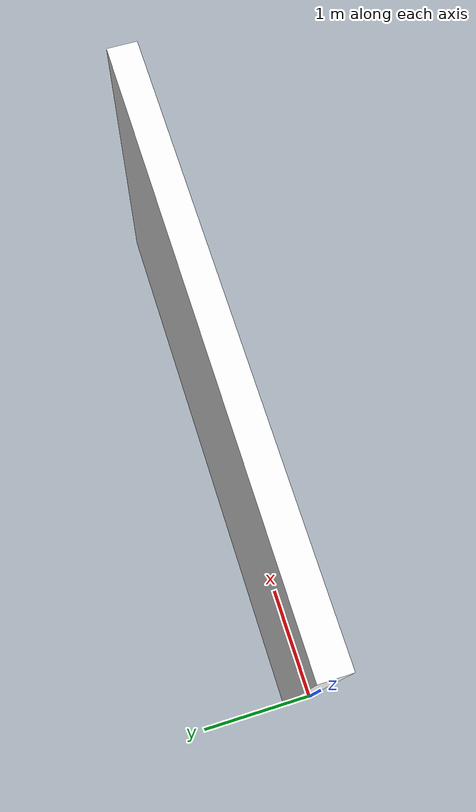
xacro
<?xml version="1.0" encoding="UTF-8"?>
<robot xmlns:xacro="http://wiki.ros.org/xacro" name="wall">

  <!-- Use this if parameters are set from the launch file, otherwise delete -->
  <xacro:arg name="prefix" default="" />

  <xacro:include filename="$(find wall_description)/urdf/inertials.xacro" />
  <xacro:include filename="$(find wall_description)/urdf/materials.xacro" />
  <xacro:include filename="$(find wall_description)/urdf/wall_macro.xacro"/>

  <!-- create link fixed to the "world" -->
  <link name="world" />

  <!-- Load robot's macro with parameters -->
  <xacro:wall prefix="$(arg prefix)" parent="world" length="5" thickness="0.25" height="3" material="white">
    <origin xyz="0 0 0" rpy="0 0 0" />
  </xacro:wall>

</robot>

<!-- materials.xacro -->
<robot>
  <material name="black">
    <color rgba="0.0 0.0 0.0 1.0"/>
  </material>

  <material name="blue">
    <color rgba="0.0 0.0 0.8 1.0"/>
  </material>

  <material name="green">
    <color rgba="0.0 1.0 0.0 1.0"/>
  </material>

  <material name="dark_grey">
    <color rgba="0.2 0.2 0.2 1.0"/>
  </material>

  <material name="grey">
    <color rgba="0.5 0.5 0.5 1.0"/>
  </material>

  <material name="light_grey">
    <color rgba="0.8 0.8 0.8 1.0"/>
  </material>

  <material name="orange">
    <color rgba="${255/255} ${108/255} ${10/255} 1.0"/>
  </material>

  <material name="brown">
    <color rgba="0.54 0.27 0.07 1.0"/>
</material>

  <material name="red">
    <color rgba="0.8 0.0 0.0 1.0"/>
  </material>

  <material name="white">
    <color rgba="1.0 1.0 1.0 1.0"/>
  </material>

</robot>

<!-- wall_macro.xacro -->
<robot xmlns:xacro="http://wiki.ros.org/xacro">

  <xacro:macro name="wall" params="parent prefix *origin length thickness height material">

    <joint name="${prefix}joint" type="fixed">
      <xacro:insert_block name="origin" />
      <parent link="${parent}" />
      <child link="${prefix}base" />
    </joint>

    <link name="${prefix}base">
      <visual>
        <origin rpy="0 0 0" xyz="${length/2} ${thickness/2} ${height/2}" />
        <geometry>
          <box size="${length} ${thickness} ${height}" />
        </geometry>
        <material name="${material}" />
      </visual>

      <collision>
        <origin rpy="0 0 0" xyz="${length/2} ${thickness/2} ${height/2}" />
        <geometry>
          <box size="${length} ${thickness} ${height}" />
        </geometry>
      </collision>
    </link>

  </xacro:macro>
</robot>
